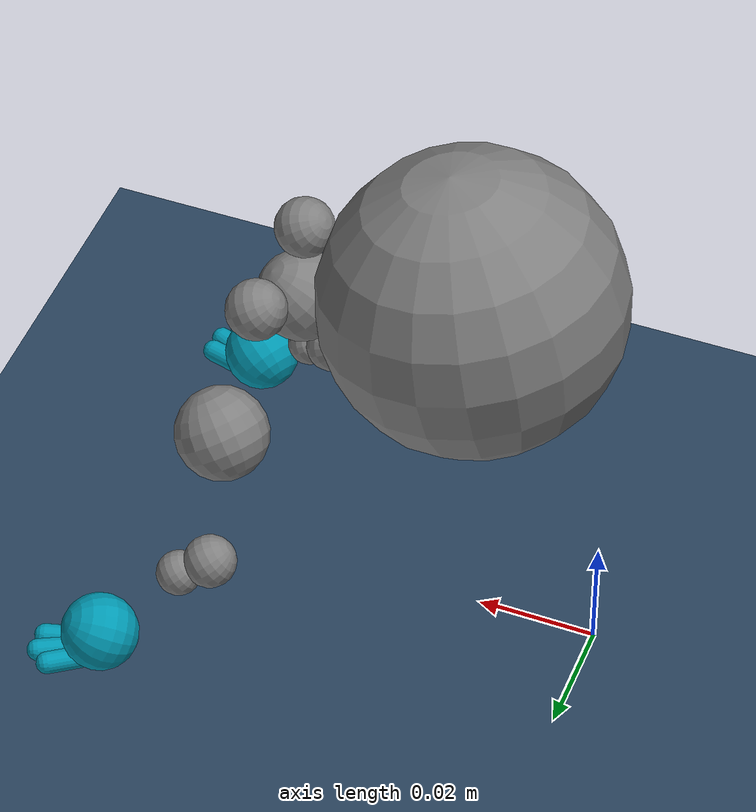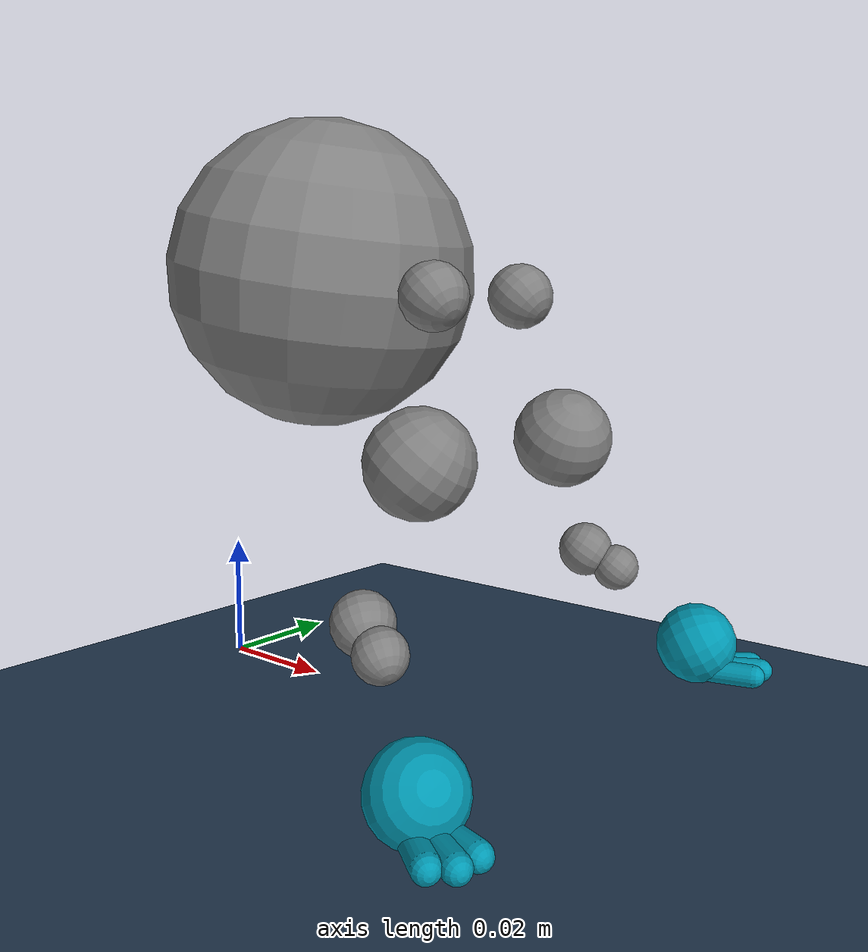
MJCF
<mujoco model="rat">
  <compiler angle="radian"/>

  <visual>
    <quality shadowsize="2048"/>
  </visual>

  <statistic meansize="0.003"/>

  <asset>
    <texture type="skybox" builtin="gradient" rgb1=".3 .5 .7" rgb2="0 0 0" width="32" height="512"/>
    <texture name="body" type="cube" builtin="flat" mark="cross" width="128" height="128" rgb1="0.8 0.6 0.4" rgb2="0.8 0.6 0.4" markrgb="1 1 1" random="0.01"/>
    <material name="body" texture="body" texuniform="true" rgba="0.8 0.6 .4 1"/>
    <texture name="grid" type="2d" builtin="checker" width="512" height="512" rgb1=".1 .2 .3" rgb2=".2 .3 .4"/>
    <material name="grid" texture="grid" texrepeat="1 1" texuniform="true" reflectance=".2"/>
  </asset>

  <default>
    <joint limited="true" solreflimit="0.01 1" solimplimit="0.99 0.9999 0" armature="6e-07" damping="0.001"/>
    <geom friction="0.7 0.005 0.0001" solref="0.005 1"/>
    <site group="3" rgba="0 0 1 1"/>
    <general ctrllimited="true" ctrlrange="-1 1" forcelimited="false" gainprm="0.01"/>
    <default class="bone">
      <geom contype="0" conaffinity="0" group="0" rgba="0.5 0.5 0.5 1" density="1100.0"/>
    </default>
    <default class="no_collision">
      <geom contype="0" conaffinity="0" condim="3" group="2"/>
    </default>
    <default class="collision">
      <geom contype="1" conaffinity="1" condim="3" group="2"/>
      <default class="collision_primitive">
        <geom type="capsule" group="2" rgba="0 0.5 0.5 1" density="500.0"/>
        <default class="collision_primitive_paw">
          <geom condim="3" priority="1" rgba="0 0.6 0.7 1" friction="1.5 0.005 0.0001"/>
        </default>
        <default class="nonself_collision_primitive_paw">
          <geom conaffinity="0" priority="1" rgba="0 0.6 0.7 1" friction="1.5 0.005 0.0001"/>
        </default>
      </default>
    </default>
    <default class="collision_floor">
      <geom contype="0" conaffinity="1" condim="3"/>
    </default>
    <default class="lumbar">
      <joint group="3" pos="0.003 0 -0.003" armature="1e-05" damping="0.03" solimplimit="0 .99 .01"/>
      <general gainprm="0.15"/>
      <default class="lumbar_extend">
        <joint stiffness="0.02" range="-0.5235987755982988 0.7853981633974483"/>
        <general gainprm="0.4"/>
      </default>
      <default class="lumbar_bend">
        <joint stiffness="0.03" range="-0.5235987755982988 0.5235987755982988"/>
      </default>
      <default class="lumbar_twist">
        <joint stiffness="0.03" range="-0.5235987755982988 0.5235987755982988"/>
      </default>
    </default>
    <default class="cervical">
      <joint group="3" pos="-0.02 0 -0.05" stiffness="1.0" armature="0.001" damping="1.0" solimplimit="0 .99 .01"/>
      <default class="cervical_extend">
        <joint range="-0.4072434921320102 0.6108652381980153"/>
        <general gainprm="2.5"/>
      </default>
      <default class="cervical_bend">
        <joint range="-0.6108652381980153 0.6108652381980153"/>
        <general gainprm="2.5"/>
      </default>
      <default class="cervical_twist">
        <joint range="-0.6108652381980153 0.6108652381980153"/>
        <general gainprm="2.5"/>
      </default>
    </default>
    <default class="atlas">
      <joint axis="0 -1 0" stiffness="0.002" range="-0.08726646259971647 0.7853981633974483" damping="0.002" solimplimit="0 .99 .01"/>
      <general gainprm="0.025"/>
    </default>
    <default class="mandible">
      <joint stiffness="0.002" range="-0.296705972839036 0.2617993877991494" springref="-0.314159265359" damping="0.002" solimplimit="0 .99 .01"/>
      <general gainprm="0.025"/>
    </default>
    <default class="caudal">
      <joint group="3" stiffness="1e-05" damping="0.002" solimplimit="0 .99 .01"/>
      <general gainprm="0.005"/>
      <default class="caudal_extend">
        <joint range="-0.08726646259971647 0.08726646259971647"/>
      </default>
      <default class="caudal_bend">
        <joint range="-0.08726646259971647 0.08726646259971647"/>
      </default>
    </default>
    <default class="hip">
      <joint armature="1e-05" damping="0.02" solimplimit="0 .99 .01"/>
      <general gainprm="0.2"/>
      <default class="hip_supinate">
        <joint range="-0.6981317007977318 0.5235987755982988"/>
      </default>
      <default class="hip_abduct">
        <joint range="-0.5235987755982988 1.047197551196598"/>
      </default>
      <default class="hip_extend">
        <joint range="-1.570796326794897 1.047197551196598"/>
        <general gainprm="0.3"/>
      </default>
    </default>
    <default class="knee">
      <joint range="-1.221730476396031 1.53588974175501" damping="0.005" solimplimit="0 .99 .01"/>
      <general gainprm="0.2"/>
    </default>
    <default class="ankle">
      <joint range="-0.1396263401595464 1.396263401595464" damping="0.003" solimplimit="0 .99 .01"/>
      <general gainprm="0.2"/>
    </default>
    <default class="toe">
      <joint range="0 0.8726646259971648" damping="0.001" solimplimit="0 .99 .01"/>
      <general gainprm="0.025"/>
    </default>
    <default class="scapula">
      <joint damping="0.005" solimplimit="0 .99 .01"/>
      <general gainprm="0.25"/>
      <default class="scapula_supinate">
        <joint pos="0 0.005000000000000001 0" range="-0.0174532925199433 0.1745329251994329"/>
      </default>
      <default class="scapula_abduct">
        <joint pos="0 0.005000000000000001 -0.01" range="-0.2617993877991494 0.2617993877991494"/>
      </default>
      <default class="scapula_extend">
        <joint pos="0 0 0" range="-0.03490658503988659 0.03490658503988659"/>
        <general gainprm="0.25"/>
      </default>
    </default>
    <default class="shoulder">
      <joint range="-1.308996938995747 0.8726646259971648" damping="0.005" solimplimit="0 .99 .01"/>
      <general gainprm="0.15"/>
    </default>
    <default class="shoulder_sup">
      <joint range="-0.05235987755982989 1.134464013796314" damping="0.005" solimplimit="0 .99 .01"/>
      <general gainprm="0.15"/>
    </default>
    <default class="elbow">
      <joint range="-1.308996938995747 0.6981317007977318" damping="0.003" solimplimit="0 .99 .01"/>
      <general gainprm="0.15"/>
    </default>
    <default class="wrist">
      <joint range="-0.3490658503988659 2.094395102393195" damping="0.002" solimplimit="0 .99 .01"/>
      <general gainprm="0.05"/>
    </default>
    <default class="finger">
      <joint range="0 1.570796326794897" damping="0.002" solimplimit="0 .99 .01"/>
      <general gainprm="0.025"/>
    </default>
    <default class="sensor">
      <site group="4"/>
    </default>
  </default>

  <worldbody>
    <geom name="floor" class="collision_floor" pos="0 0 -0.005" size="10 10 0.025" type="plane" material="grid"/>
    <light name="spotlight" mode="targetbody" target="torso"/>
    <body name="torso" pos="0.03099526054578288 2.058524937651458e-07 0.06808957263119967">
      <freejoint name="root"/>
      <light name="tracking_light" mode="targetbodycom" pos="0 0 3"/>
      <camera name="back" mode="targetbody" pos="-1 0 0.5" xyaxes="0 -1 0 1 0 2"/>
      <camera name="side" mode="targetbody" pos="0 -3 1" xyaxes="1 0 0 0 1 2"/>
      <camera name="side_alt" mode="targetbody" pos="0.5 -0.561 0.199" xyaxes="0.766 0.643 0.000 -0.162 0.192 0.968"/>
      <camera name="top" mode="targetbody" fovy="100.0" pos="0 0 1" zaxis="0 -0.2 0"/>
      <camera name="close_profile" mode="trackcom" pos=".3 -.3 0.25" xyaxes="1 1 0 -1 1 2"/>
      <camera name="close_side" mode="trackcom" pos="0 -.3 0.25" xyaxes="0 0 1 0 1 2"/>
      <geom name="collision_torso" class="no_collision" type="sphere" size="0.025" density="468.251260009" pos="-0.008200000000000001 0 0" euler="0 0.1745329251994329 0"/>
      <body name="scapula_L" pos="0.00656 0.00164 0.01148">
        <joint name="scapula_L_supinate" class="scapula_supinate" pos="0 -0.005000000000000001 0" axis="-0 -0 1"/>
        <joint name="scapula_L_abduct" class="scapula_abduct" pos="0 -0.005000000000000001 -0.01" axis="1 -0 -0"/>
        <joint name="scapula_L_extend" class="scapula_extend" pos="0 0 0" axis="0.3 1 0"/>
        <site name="shoulder_L" size="0.002" pos="0.0287 0.00984 -0.02542"/>
        <body name="upper_arm_L" pos="0.0287 0.00984 -0.02542">
          <joint name="shoulder_L" class="shoulder" axis="0 1 0"/>
          <joint name="shoulder_sup_L" class="shoulder_sup" axis="0 0 -1"/>
          <site name="elbow_L" type="cylinder" size="0.0006000000000000001 0.004" pos="-0.01593120836133218 0.01035528543486592 -0.02230369170586505" zaxis="0 1 0.2"/>
          <body name="lower_arm_L" pos="-0.01593120836133218 0.01035528543486592 -0.02230369170586505">
            <joint name="elbow_L" class="elbow" axis="0 1 0.2"/>
            <site name="wrist_L" type="cylinder" size="0.0008 0.0034" pos="0.02160265376479308 0.01260154802946263 -0.01980243261772699" zaxis="0 1 0"/>
            <body name="hand_L" pos="0.02160265376479308 0.01260154802946263 -0.01980243261772699">
              <joint name="wrist_L" class="wrist" axis="0.6 -1 0"/>
              <geom name="hand_L_collision" class="nonself_collision_primitive_paw" type="sphere" size="0.006470191588681792 0.003697252336389595 0.002218351401833757" density="2531.78122831" pos="0.001515873457919734 0.0007579367289598669 -0.004547620373759201" euler="-0.6981317007977318 0.8726646259971648 0.7853981633974483"/>
              <site name="finger_L" type="cylinder" size="0.0006000000000000001 0.005000000000000001" pos="0.003031746915839468 0.001515873457919734 -0.008337304018558537" zaxis="-0.2 1 0"/>
              <body name="finger_L" pos="0.003031746915839468 0.001515873457919734 -0.008337304018558537">
                <joint name="finger_L" class="finger" axis="-0.5 1 0"/>
                <geom name="finger_L0_collision" class="nonself_collision_primitive_paw" size="0.001848626168194797 0.003235095794340896" pos="0.004926588738239136 -0.0007579367289598669 0" euler="1.570796326794897 -1.308996938995747 0"/>
                <geom name="finger_L1_collision" class="nonself_collision_primitive_paw" size="0.001848626168194797 0.003697252336389595" pos="0.004547620373759201 0.001894841822399667 0" euler="1.570796326794897 -1.099557428756428 0"/>
                <geom name="finger_L2_collision" class="nonself_collision_primitive_paw" size="0.001848626168194797 0.003235095794340896" pos="0.002652778551359534 0.003789683644799335 0" euler="1.570796326794897 -0.9599310885968813 0"/>
                <site name="palm_L" class="sensor" type="box" size="0.004 0.004 0.002" pos="0.00492 0.00246 -0.00164" euler="0 0 0.4886921905584123"/>
              </body>
            </body>
            <geom name="radius_L_collision" class="no_collision" size="0.003732165792697991 0.01591658941003555" pos="0.01150545467526729 0.006850732667129763 -0.01222632491350886" quat="0.02376493230846292 0.7917721441518218 0.4232293467931716 0.4397829234413568"/>
            <geom name="ulna_L_collision" class="no_collision" size="0.004390783285527048 0.01317234985658114" pos="0.006749764363547758 0.004992418652633264 -0.009489848452311813" quat="0.01282244452041863 0.7446249872782607 0.4776065607195328 0.4661128472752391"/>
          </body>
          <geom name="humerus_L_collision" class="no_collision" size="0.007771321151869356 0.01554264230373871" pos="-0.007743344450064287 0.005787978890072665 -0.01198335273722202" quat="0.472560999180163 0.3450082805420177 0.0007016050154913519 0.8109592444517103"/>
        </body>
        <geom name="scapula_L_collision" class="no_collision" type="sphere" size="0.005005370825529099 0.01463182792067528 0.02431104406714439" density="513.564612303" pos="0.01757062251063465 0.008636916680112587 -0.01522952249267691" quat="0.1844194062696375 0.7692222855376651 0.4740322845517004 0.3867556738123709"/>
      </body>
      <body name="scapula_R" pos="0.00656 -0.00164 0.01148">
        <joint name="scapula_R_supinate" class="scapula_supinate" pos="0 0.005000000000000001 0" axis="0 0 -1"/>
        <joint name="scapula_R_abduct" class="scapula_abduct" pos="0 0.005000000000000001 -0.01" axis="-1 0 0"/>
        <joint name="scapula_R_extend" class="scapula_extend" pos="0 0 0" axis="-0.3 1 0"/>
        <site name="shoulder_R" size="0.002" pos="0.0287 -0.00984 -0.02542"/>
        <body name="upper_arm_R" pos="0.0287 -0.00984 -0.02542">
          <joint name="shoulder_R" class="shoulder" axis="0 1 0"/>
          <joint name="shoulder_sup_R" class="shoulder_sup" axis="-0 -0 1"/>
          <site name="elbow_R" type="cylinder" size="0.0006000000000000001 0.004" pos="-0.01593120836133218 -0.01035528543486592 -0.02230369170586505" zaxis="0 1 -0.2"/>
          <body name="lower_arm_R" pos="-0.01593120836133218 -0.01035528543486592 -0.02230369170586505">
            <joint name="elbow_R" class="elbow" axis="0 1 -0.2"/>
            <site name="wrist_R" type="cylinder" size="0.0008 0.0034" pos="0.02160265376479308 -0.01260154802946263 -0.01980243261772699" zaxis="0 1 0"/>
            <body name="hand_R" pos="0.02160265376479308 -0.01260154802946263 -0.01980243261772699">
              <joint name="wrist_R" class="wrist" axis="-0.6 -1 0"/>
              <geom name="hand_R_collision" class="nonself_collision_primitive_paw" type="sphere" size="0.006470191588681792 0.003697252336389595 0.002218351401833757" density="2531.78122831" pos="0.001515873457919734 -0.0007579367289598669 -0.004547620373759201" euler="0.6981317007977318 0.8726646259971648 -0.7853981633974483"/>
              <site name="finger_R" type="cylinder" size="0.0006000000000000001 0.005000000000000001" pos="0.003031746915839468 -0.001515873457919734 -0.008337304018558537" zaxis="0.2 1 0"/>
              <body name="finger_R" pos="0.003031746915839468 -0.001515873457919734 -0.008337304018558537">
                <joint name="finger_R" class="finger" axis="0.5 1 0"/>
                <geom name="finger_R0_collision" class="nonself_collision_primitive_paw" size="0.001848626168194797 0.003235095794340896" pos="0.004926588738239136 0.0007579367289598669 0" euler="1.570796326794897 1.308996938995747 0"/>
                <geom name="finger_R1_collision" class="nonself_collision_primitive_paw" size="0.001848626168194797 0.003697252336389595" pos="0.004547620373759201 -0.001894841822399667 0" euler="1.570796326794897 1.099557428756428 0"/>
                <geom name="finger_R2_collision" class="nonself_collision_primitive_paw" size="0.001848626168194797 0.003235095794340896" pos="0.002652778551359534 -0.003789683644799335 0" euler="1.570796326794897 0.9599310885968813 0"/>
                <site name="palm_R" class="sensor" type="box" size="0.004 0.004 0.002" pos="0.00492 -0.00246 -0.00164" euler="0 0 -0.4886921905584123"/>
              </body>
            </body>
            <geom name="radius_R_collision" class="no_collision" size="0.003732165792697991 0.01591658941003555" pos="0.01150546139578159 -0.0068511746740596 -0.01222632995360402" quat="0.4397828585901176 0.423230473256099 0.7917715587074765 0.02376557635859348"/>
            <geom name="ulna_R_collision" class="no_collision" size="0.004390783285527048 0.01317234985658114" pos="0.006749766930753688 -0.004992858736000205 -0.009489848507155575" quat="0.4661127828257156 0.4776067795325061 0.7446248854693838 0.01282254930824632"/>
          </body>
          <geom name="humerus_R_collision" class="no_collision" size="0.007771321151869356 0.01554264230373871" pos="-0.007743341889514446 -0.005788347560550173 -0.01198335067124012" quat="0.8109593935310486 0.0007013948082913995 0.3450082795040448 0.4725607444157158"/>
        </body>
        <geom name="scapula_R_collision" class="no_collision" type="sphere" size="0.005005370266735553 0.01463183127343655 0.02431103959679604" density="513.564646393" pos="0.01757062018850453 -0.008637295267367218 -0.01522952062810994" quat="0.3867556972129688 0.4740321312040688 0.7692223496423682 0.1844194839763772"/>
      </body>
    </body>
  </worldbody>

  <actuator>
    <general name="scapula_L_supinate" forcerange="-0.25 0.25" joint="scapula_L_supinate" dyntype="filter" biastype="affine" dynprm="0.04" gainprm="0.04799655442984406" biasprm="0.03926990816987241 -0.5"/>
    <general name="scapula_L_abduct" forcerange="-0.25 0.25" joint="scapula_L_abduct" dyntype="filter" biastype="affine" dynprm="0.04" gainprm="0.1308996938995747" biasprm="0 -0.5"/>
    <general name="scapula_L_extend" forcerange="-0.25 0.25" joint="scapula_L_extend" dyntype="filter" biastype="affine" dynprm="0.04" gainprm="0.0174532925199433" biasprm="0 -0.5"/>
    <general name="shoulder_L" forcerange="-0.15 0.15" joint="shoulder_L" dyntype="filter" biastype="affine" dynprm="0.04" gainprm="0.3272492347489368" biasprm="-0.06544984694978737 -0.3"/>
    <general name="shoulder_sup_L" forcerange="-0.15 0.15" joint="shoulder_sup_L" dyntype="filter" biastype="affine" dynprm="0.04" gainprm="0.1780235837034216" biasprm="0.1623156204354726 -0.3"/>
    <general name="elbow_L" forcerange="-0.15 0.15" joint="elbow_L" dyntype="filter" biastype="affine" dynprm="0.04" gainprm="0.3010692959690218" biasprm="-0.0916297857297023 -0.3"/>
    <general name="wrist_L" forcerange="-0.05 0.05" joint="wrist_L" dyntype="filter" biastype="affine" dynprm="0.04" gainprm="0.1221730476396031" biasprm="0.08726646259971647 -0.1"/>
    <general name="finger_L" forcerange="-0.025 0.025" joint="finger_L" dyntype="filter" biastype="affine" dynprm="0.04" gainprm="0.03926990816987241" biasprm="0.03926990816987241 -0.05"/>
    <general name="scapula_R_supinate" forcerange="-0.25 0.25" joint="scapula_R_supinate" dyntype="filter" biastype="affine" dynprm="0.04" gainprm="0.04799655442984406" biasprm="0.03926990816987241 -0.5"/>
    <general name="scapula_R_abduct" forcerange="-0.25 0.25" joint="scapula_R_abduct" dyntype="filter" biastype="affine" dynprm="0.04" gainprm="0.1308996938995747" biasprm="0 -0.5"/>
    <general name="scapula_R_extend" forcerange="-0.25 0.25" joint="scapula_R_extend" dyntype="filter" biastype="affine" dynprm="0.04" gainprm="0.0174532925199433" biasprm="0 -0.5"/>
    <general name="shoulder_R" forcerange="-0.15 0.15" joint="shoulder_R" dyntype="filter" biastype="affine" dynprm="0.04" gainprm="0.3272492347489368" biasprm="-0.06544984694978737 -0.3"/>
    <general name="shoulder_sup_R" forcerange="-0.15 0.15" joint="shoulder_sup_R" dyntype="filter" biastype="affine" dynprm="0.04" gainprm="0.1780235837034216" biasprm="0.1623156204354726 -0.3"/>
    <general name="elbow_R" forcerange="-0.15 0.15" joint="elbow_R" dyntype="filter" biastype="affine" dynprm="0.04" gainprm="0.3010692959690218" biasprm="-0.0916297857297023 -0.3"/>
    <general name="wrist_R" forcerange="-0.05 0.05" joint="wrist_R" dyntype="filter" biastype="affine" dynprm="0.04" gainprm="0.1221730476396031" biasprm="0.08726646259971647 -0.1"/>
    <general name="finger_R" forcerange="-0.025 0.025" joint="finger_R" dyntype="filter" biastype="affine" dynprm="0.04" gainprm="0.03926990816987241" biasprm="0.03926990816987241 -0.05"/>
  </actuator>
  <sensor>
    <subtreelinvel name="torso" body="torso"/>
  </sensor>
  <compiler meshdir="./"/>
</mujoco>
